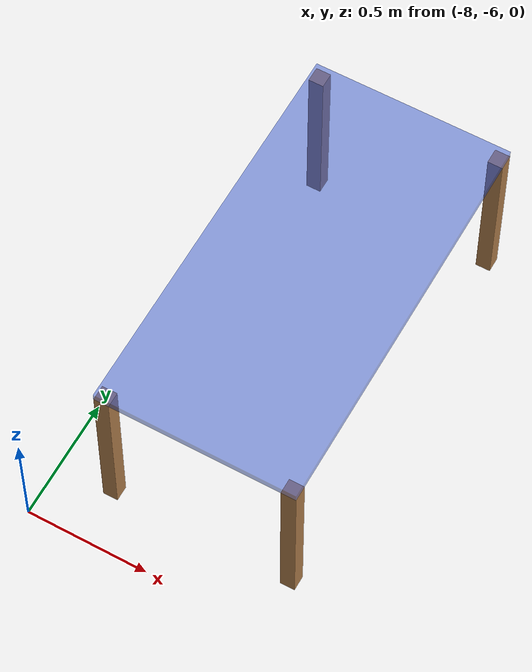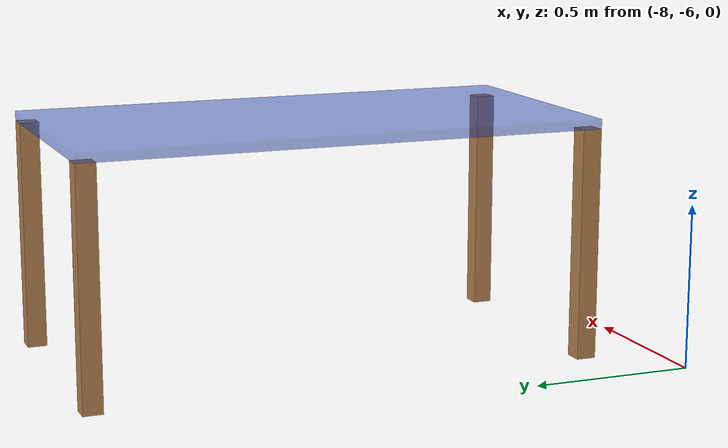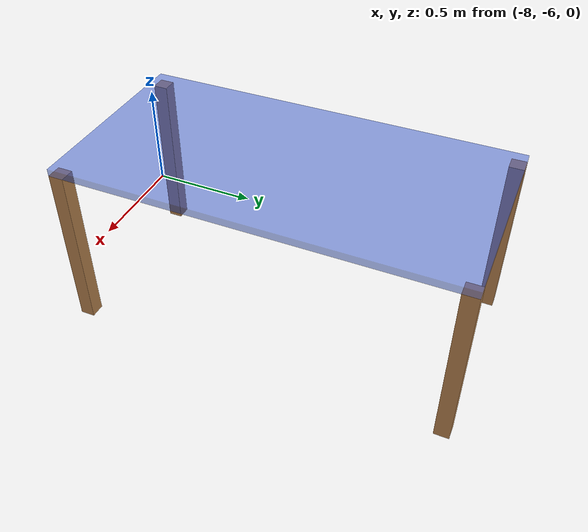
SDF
<?xml version="1.0" ?>
<sdf version='1.4'>
  <model name='mesa_comedor'>
    <link name='mesa_link'>
      <pose>0 0 0 0 -0 0</pose>
      <inertial>
        <pose>1.58603e-17 0 0.513571 0 -0 0</pose>
        <mass>7</mass>
        <inertia>
          <ixx>1.28229</ixx>
          <ixy>0</ixy>
          <ixz>5.70179e-17</ixz>
          <iyy>3.10629</iyy>
          <iyz>0</iyz>
          <izz>3.4192</izz>
        </inertia>
      </inertial>
      <collision name='mesa_link_collision'>
        <pose>0 0 0.725 0 -0 0</pose>
        <geometry>
          <box>
            <size>1.6 0.8 0.03</size>
          </box>
        </geometry>
        <surface>
          <contact>
            <ode/>
          </contact>
          <friction>
            <ode>
              <mu>100</mu>
              <mu2>100</mu2>
            </ode>
          </friction>
          <bounce/>
        </surface>
        <max_contacts>10</max_contacts>
      </collision>
      <collision name='mesa_link_collision_pata_1_link'>
        <pose>0.77 0.37 0.355 0 -0 0</pose>
        <geometry>
          <box>
            <size>0.06 0.06 0.71</size>
          </box>
        </geometry>
        <surface>
          <contact>
            <ode/>
          </contact>
          <friction>
            <ode>
              <mu>100</mu>
              <mu2>100</mu2>
            </ode>
          </friction>
          <bounce/>
        </surface>
        <surface>
          <contact>
            <ode/>
          </contact>
          <friction>
            <ode>
              <mu>100</mu>
              <mu2>100</mu2>
            </ode>
          </friction>
        </surface>
        <max_contacts>10</max_contacts>
      </collision>
      <collision name='mesa_link_collision_pata_2_link'>
        <pose>0.77 -0.37 0.355 0 -0 0</pose>
        <geometry>
          <box>
            <size>0.06 0.06 0.71</size>
          </box>
        </geometry>
        <surface>
          <contact>
            <ode/>
          </contact>
          <friction>
            <ode>
              <mu>100</mu>
              <mu2>100</mu2>
            </ode>
          </friction>
          <bounce/>
        </surface>
        <surface>
          <contact>
            <ode/>
          </contact>
          <friction>
            <ode>
              <mu>100</mu>
              <mu2>100</mu2>
            </ode>
          </friction>
        </surface>
        <max_contacts>10</max_contacts>
      </collision>
      <collision name='mesa_link_collision_pata_3_link'>
        <pose>-0.77 -0.37 0.355 0 -0 0</pose>
        <geometry>
          <box>
            <size>0.06 0.06 0.71</size>
          </box>
        </geometry>
        <surface>
          <contact>
            <ode/>
          </contact>
          <friction>
            <ode>
              <mu>100</mu>
              <mu2>100</mu2>
            </ode>
          </friction>
          <bounce/>
        </surface>
        <surface>
          <contact>
            <ode/>
          </contact>
          <friction>
            <ode>
              <mu>100</mu>
              <mu2>100</mu2>
            </ode>
          </friction>
        </surface>
        <max_contacts>10</max_contacts>
      </collision>
      <collision name='mesa_link_collision_pata_4_link'>
        <pose>-0.77 0.37 0.355 0 -0 0</pose>
        <geometry>
          <box>
            <size>0.06 0.06 0.71</size>
          </box>
        </geometry>
        <surface>
          <contact>
            <ode/>
          </contact>
          <friction>
            <ode>
              <mu>100</mu>
              <mu2>100</mu2>
            </ode>
          </friction>
          <bounce/>
        </surface>
        <surface>
          <contact>
            <ode/>
          </contact>
          <friction>
            <ode>
              <mu>100</mu>
              <mu2>100</mu2>
            </ode>
          </friction>
        </surface>
        <max_contacts>10</max_contacts>
      </collision>
      <visual name='mesa_link_visual'>
        <pose>0 0 0.725 0 -0 0</pose>
        <geometry>
          <box>
            <size>1.6 0.8 0.03</size>
          </box>
        </geometry>
        <material>
          <script>
            <name>Gazebo/BlueTransparent</name>
            <uri>__default__</uri>
          </script>
        </material>
      </visual>
      <visual name='mesa_link_visual_pata_1_link'>
        <pose>0.77 0.37 0.355 0 -0 0</pose>
        <geometry>
          <box>
            <size>0.06 0.06 0.71</size>
          </box>
        </geometry>
        <material>
          <script>
            <name>Gazebo/Wood</name>
            <uri>__default__</uri>
          </script>
        </material>
      </visual>
      <visual name='mesa_link_visual_pata_2_link'>
        <pose>0.77 -0.37 0.355 0 -0 0</pose>
        <geometry>
          <box>
            <size>0.06 0.06 0.71</size>
          </box>
        </geometry>
        <material>
          <script>
            <name>Gazebo/Wood</name>
            <uri>__default__</uri>
          </script>
        </material>
      </visual>
      <visual name='mesa_link_visual_pata_3_link'>
        <pose>-0.77 -0.37 0.355 0 -0 0</pose>
        <geometry>
          <box>
            <size>0.06 0.06 0.71</size>
          </box>
        </geometry>
        <material>
          <script>
            <name>Gazebo/Wood</name>
            <uri>__default__</uri>
          </script>
        </material>
      </visual>
      <visual name='mesa_link_visual_pata_4_link'>
        <pose>-0.77 0.37 0.355 0 -0 0</pose>
        <geometry>
          <box>
            <size>0.06 0.06 0.71</size>
          </box>
        </geometry>
        <material>
          <script>
            <name>Gazebo/Wood</name>
            <uri>__default__</uri>
          </script>
        </material>
      </visual>
      <velocity_decay>
        <linear>0</linear>
        <angular>0</angular>
      </velocity_decay>
      <velocity_decay>
        <linear>0</linear>
        <angular>0</angular>
      </velocity_decay>
      <velocity_decay>
        <linear>0</linear>
        <angular>0</angular>
      </velocity_decay>
      <velocity_decay>
        <linear>0</linear>
        <angular>0</angular>
      </velocity_decay>
      <gravity>1</gravity>
      <velocity_decay>
        <linear>0</linear>
        <angular>0</angular>
      </velocity_decay>
      <self_collide>1</self_collide>
      <kinematic>0</kinematic>
    </link>
    <pose>-7.4 -5 0 0 -0 1.57</pose>
    <static>0</static>
  </model>
</sdf>
